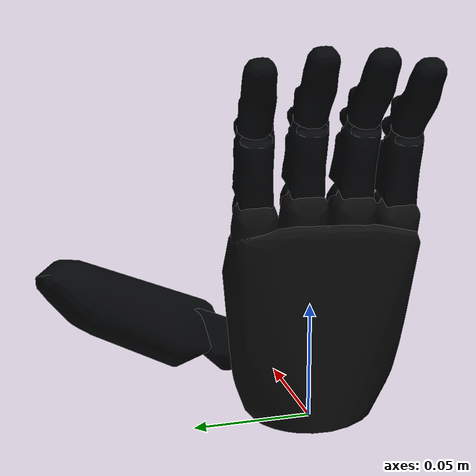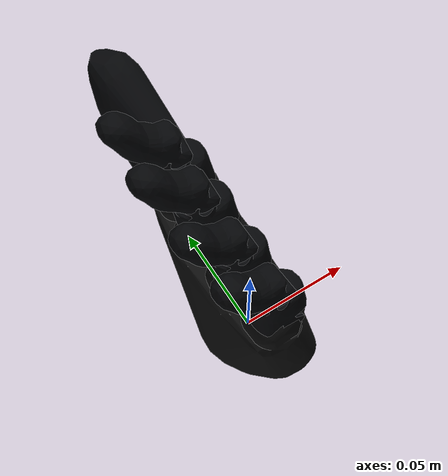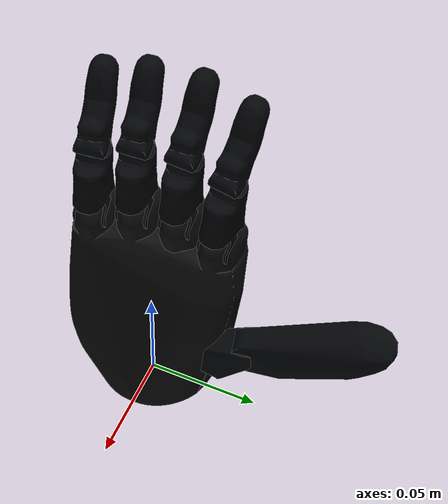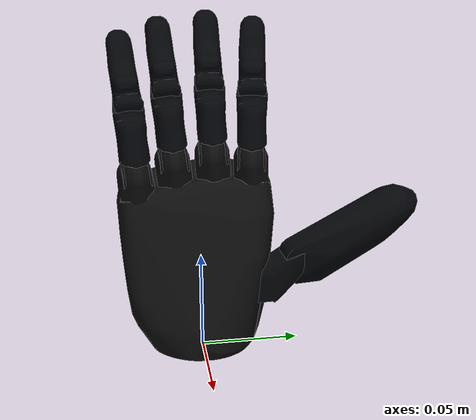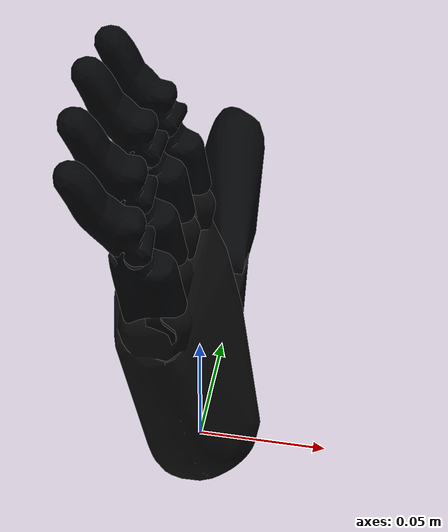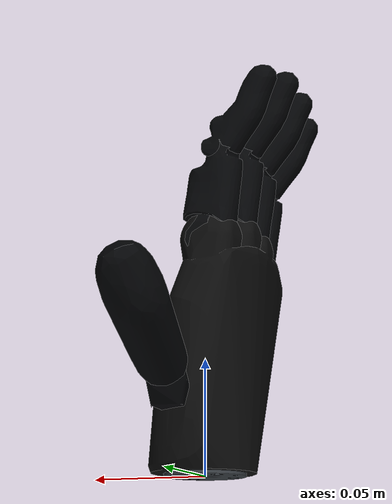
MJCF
<mujoco model="ability_hand">
  <compiler angle="radian" autolimits="true" />
  <option gravity="0 0 0" timestep="0.001" />
  <visual>
    <global offwidth="3840" offheight="2160" />
  </visual>
  <asset>
    <mesh name="wristmesh" content_type="model/obj" file="meshes/visual/wristmesh.obj" />
    <mesh name="wristmesh_C_collision000" content_type="model/obj" file="meshes/collision/wristmesh_C_collision000.obj" />
    <mesh name="FB_palm_ref_MIR" content_type="model/obj" file="meshes/visual/FB_palm_ref_MIR.obj" />
    <mesh name="FB_palm_ref_MIR_collision000" content_type="model/obj" file="meshes/collision/FB_palm_ref_MIR_collision000.obj" />
    <mesh name="FB_palm_ref_MIR_collision001" content_type="model/obj" file="meshes/collision/FB_palm_ref_MIR_collision001.obj" />
    <mesh name="FB_palm_ref_MIR_collision002" content_type="model/obj" file="meshes/collision/FB_palm_ref_MIR_collision002.obj" />
    <mesh name="FB_palm_ref_MIR_collision003" content_type="model/obj" file="meshes/collision/FB_palm_ref_MIR_collision003.obj" />
    <mesh name="FB_palm_ref_MIR_collision004" content_type="model/obj" file="meshes/collision/FB_palm_ref_MIR_collision004.obj" />
    <mesh name="thumb-F1-MIR" content_type="model/obj" file="meshes/visual/thumb-F1-MIR.obj" />
    <mesh name="thumb-F1-MIR_C_collision000" content_type="model/obj" file="meshes/collision/thumb-F1-MIR_C_collision000.obj" />
    <mesh name="thumb-F2" content_type="model/obj" file="meshes/visual/thumb-F2.obj" />
    <mesh name="thumb-F2_C_collision000" content_type="model/obj" file="meshes/collision/thumb-F2_C_collision000.obj" />
    <mesh name="idx-F1" content_type="model/obj" file="meshes/visual/idx-F1.obj" />
    <mesh name="idx-F2" content_type="model/obj" file="meshes/visual/idx-F2.obj" />
    <mesh name="idx-F2_C_collision000" content_type="model/obj" file="meshes/collision/idx-F2_C_collision000.obj" />
    <mesh name="idx-F2_C_collision001" content_type="model/obj" file="meshes/collision/idx-F2_C_collision001.obj" />
    <mesh name="idx-F2_C_collision002" content_type="model/obj" file="meshes/collision/idx-F2_C_collision002.obj" />
    <mesh name="idx-F2_C_collision003" content_type="model/obj" file="meshes/collision/idx-F2_C_collision003.obj" />
    <material name="wristmesh_material" rgba="0.20784314 0.22745098 0.24705882 1" />
    <material name="FB_palm_ref_MIR_material" rgba="0.04705882 0.04705882 0.04705882 1" />
    <material name="thumb-F1-MIR_material" rgba="0.01176471 0.01568627 0.02352941 1" />
    <material name="thumb-F2_material" rgba="0.01176471 0.01568627 0.02352941 1" />
    <material name="idx-F1_material" rgba="0.01176471 0.01568627 0.02352941 1" />
    <material name="idx-F2_material" rgba="0.01176471 0.01568627 0.02352941 1" />
    <texture type="skybox" builtin="gradient" rgb1="1 1 1" rgb2="1 1 1" width="32" height="512" />
  </asset>
  <worldbody>
    <light pos="0 0 5" dir="0 0 -1" directional="true" />
    <body name="hand_root">
      <body name="base" quat="0.707109 0 0 -0.707105">
        <inertial pos="0.0224191 -0.000157982 -1.31987e-05" quat="0.850371 -0.0113901 -0.220517 0.47761" mass="0.2" diaginertia="0.000893087 0.000893087 0.000893087" />
        <geom name="base_wristmesh_visual" type="mesh" contype="0" conaffinity="0" group="1" density="0" mesh="wristmesh" material="wristmesh_material" />
        <geom type="mesh" mesh="wristmesh_C_collision000" group="3" />
        <body name="thumb_base" pos="-0.0240477 0.00378125 0.0323296" quat="0.0442297 0.00061027 -0.999021 -2.70192e-05">
          <inertial pos="0.0224191 -0.000157982 -1.31987e-05" quat="0.850371 -0.0113901 -0.220517 0.47761" mass="0.2" diaginertia="0.000893087 0.000893087 0.000893087" />
          <geom name="thumb_base_FB_palm_ref_MIR_visual" type="mesh" contype="0" conaffinity="0" group="1" density="0" mesh="FB_palm_ref_MIR" material="FB_palm_ref_MIR_material" />
          <geom name="thumb_base_collision_part000" type="mesh" mesh="FB_palm_ref_MIR_collision000" group="3" />
          <geom name="thumb_base_collision_part001" type="mesh" mesh="FB_palm_ref_MIR_collision001" group="3" />
          <geom name="thumb_base_collision_part002" type="mesh" mesh="FB_palm_ref_MIR_collision002" group="3" />
          <geom name="thumb_base_collision_part003" type="mesh" mesh="FB_palm_ref_MIR_collision003" group="3" />
          <geom name="thumb_base_collision_part004" type="mesh" mesh="FB_palm_ref_MIR_collision004" group="3" />
          <body name="thumb_L1" quat="0 0.995546 -0.0942819 0">
            <inertial pos="0.014606 -0.00189085 -0.00311554" quat="0.306728 0.531258 0.293089 0.733336" mass="0.00268342" diaginertia="8.14795e-05 7.42718e-05 1.14409e-05" />
            <joint name="thumb_q1" pos="0 0 0" axis="0 0 1" range="-2.0944 0" actuatorfrcrange="-1.2 1.2" damping="0.1" frictionloss="0.0" armature="0.0002" />
            <geom name="thumb_L1_thumb-F1-MIR_visual" pos="0.0278284 0 0.0147507" quat="0.608761 0.793353 0 0" type="mesh" contype="0" conaffinity="0" group="1" density="0" mesh="thumb-F1-MIR" material="thumb-F1-MIR_material" />
            <geom pos="0.0278284 0 0.0147507" quat="0.608761 0.793353 0 0" type="mesh" mesh="thumb-F1-MIR_C_collision000" group="3" />
            <body name="thumb_L2" pos="0.0278284 0 0.0147507" quat="0.608761 0.793353 0 0">
              <inertial pos="0.0300205 0.00559476 -0.00415044" quat="0.00721249 0.656735 -0.223684 0.720148" mass="0.0055" diaginertia="0.00180207 0.00170892 0.000287855" />
              <joint name="thumb_q2" pos="0 0 0" axis="0 0 1" range="0 2.0944" actuatorfrcrange="-6 6" damping="0.1" frictionloss="0.0" armature="0.0002" />
              <geom name="thumb_L2_thumb-F2_visual" pos="0.0651867 0.0233402 0.00393483" quat="3.21978e-07 -0.985259 -0.171069 5.59046e-08" type="mesh" contype="0" conaffinity="0" group="1" density="0" mesh="thumb-F2" material="thumb-F2_material" />
              <geom pos="0.0651867 0.0233402 0.00393483" quat="3.21978e-07 -0.985259 -0.171069 5.59046e-08" type="mesh" mesh="thumb-F2_C_collision000" group="3" />
              <body name="thumb_tip" pos="0.065 0.016 0" />
            </body>
          </body>
          <body name="index_L1" pos="0.00949 -0.01304 -0.06295" quat="0.744129 -0.128113 0.653556 -0.0521858">
            <inertial pos="0.0224191 -0.000157982 -1.31987e-05" quat="-0.00406251 0.706621 0.00934715 0.707518" mass="0.00635888" diaginertia="0.000381765 0.000369601 2.96432e-05" />
            <joint name="index_q1" pos="0 0 0" axis="0 0 1" range="0 2.0944" actuatorfrcrange="-6 6" damping="0.1" frictionloss="0.0" armature="0.0002" />
            <geom name="index_L1_idx-F1_visual" pos="0.0384727 0.0032577 0" quat="0.999108 0 0 0.0422244" type="mesh" contype="0" conaffinity="0" group="1" density="0" mesh="idx-F1" material="idx-F1_material" />
            <geom size="0.0085" pos="0.036 -0.00175 0" group="3" />
            <geom size="0.014 0.006 0.008" pos="0.019 -0.0045 0" quat="0.999108 0 0 0.0422374" type="box" group="3" />
            <geom size="0.01 0.005 0.008" pos="0.018 0.006 0" quat="0.999108 0 0 0.0422374" type="box" group="3" />
            <geom size="0.006 0.006 0.001" pos="-0.001 0 0.007" quat="0.999108 0 0 0.0422374" type="box" group="3" />
            <geom size="0.006 0.006 0.001" pos="-0.001 0 -0.007" quat="0.999108 0 0 0.0422374" type="box" group="3" />
            <body name="index_L2" pos="0.0384727 0.0032577 0" quat="0.999108 0 0 0.0422244">
              <inertial pos="0.0133682 -0.00875392 -2.886e-05" quat="-0.161363 0.673074 0.216775 0.688434" mass="0.00645" diaginertia="0.000264645 0.000263553 1.71391e-05" />
              <joint name="index_q2" pos="0 0 0" axis="0 0 1" range="0 2.6586" actuatorfrcrange="-6 6" damping="0.0" frictionloss="0.0" armature="0.0" />
              <geom name="index_L2_idx-F2_visual" pos="0.0091241 0 0" quat="1 0 0 0" type="mesh" contype="0" conaffinity="0" group="1" density="0" mesh="idx-F2" material="idx-F2_material" />
              <geom name="index_L2_collision_part000" type="mesh" mesh="idx-F2_C_collision000" group="3" />
              <geom name="index_L2_collision_part001" type="mesh" mesh="idx-F2_C_collision001" group="3" />
              <geom name="index_L2_collision_part002" type="mesh" mesh="idx-F2_C_collision002" group="3" />
              <geom name="index_L2_collision_part003" type="mesh" mesh="idx-F2_C_collision003" group="3" />
              <geom size="0.007" pos="0.03 -0.016 0" group="3" />
              <body name="index_tip" pos="0.035 -0.018 0" />
            </body>
          </body>
          <body name="middle_L1" pos="-0.00965319 -0.0153103 -0.0678539" quat="0.728921 -0.100652 0.672921 -0.0756367">
            <inertial pos="0.0224191 -0.000157982 -1.31987e-05" quat="-0.00406251 0.706621 0.00934715 0.707518" mass="0.00635888" diaginertia="0.000381765 0.000369601 2.96432e-05" />
            <joint name="middle_q1" pos="0 0 0" axis="0 0 1" range="0 2.0944" actuatorfrcrange="-6 6" damping="0.1" frictionloss="0.0" armature="0.0002" />
            <geom name="middle_L1_idx-F1_visual" pos="0.0384727 0.0032577 0" quat="0.999108 0 0 0.0422244" type="mesh" contype="0" conaffinity="0" group="1" density="0" mesh="idx-F1" material="idx-F1_material" />
            <geom size="0.0085" pos="0.036 -0.00175 0" group="3" />
            <geom size="0.014 0.006 0.008" pos="0.019 -0.0045 0" quat="0.999108 0 0 0.0422374" type="box" group="3" />
            <geom size="0.01 0.005 0.008" pos="0.018 0.006 0" quat="0.999108 0 0 0.0422374" type="box" group="3" />
            <geom size="0.006 0.006 0.001" pos="-0.001 0 0.007" quat="0.999108 0 0 0.0422374" type="box" group="3" />
            <geom size="0.006 0.006 0.001" pos="-0.001 0 -0.007" quat="0.999108 0 0 0.0422374" type="box" group="3" />
            <body name="middle_L2" pos="0.0384727 0.0032577 0" quat="0.999108 0 0 0.0422244">
              <inertial pos="0.0133682 -0.00875392 -2.886e-05" quat="-0.161363 0.673074 0.216775 0.688434" mass="0.00645" diaginertia="0.000264645 0.000263553 1.71391e-05" />
              <joint name="middle_q2" pos="0 0 0" axis="0 0 1" range="0 2.6586" actuatorfrcrange="-6 6" damping="0.0" frictionloss="0.0" armature="0.0" />
              <geom name="middle_L2_idx-F2_visual" pos="0.0091241 0 0" quat="1 0 0 0" type="mesh" contype="0" conaffinity="0" group="1" density="0" mesh="idx-F2" material="idx-F2_material" />
              <geom name="middle_L2_collision_part000" type="mesh" mesh="idx-F2_C_collision000" group="3" />
              <geom name="middle_L2_collision_part001" type="mesh" mesh="idx-F2_C_collision001" group="3" />
              <geom name="middle_L2_collision_part002" type="mesh" mesh="idx-F2_C_collision002" group="3" />
              <geom name="middle_L2_collision_part003" type="mesh" mesh="idx-F2_C_collision003" group="3" />
              <geom size="0.007" pos="0.03 -0.016 0" group="3" />
              <body name="middle_tip" pos="0.035 -0.018 0" />
            </body>
          </body>
          <body name="ring_L1" pos="-0.0299543 -0.0142125 -0.0672861" quat="0.712473 -0.072948 0.690473 -0.101527">
            <inertial pos="0.0224191 -0.000157982 -1.31987e-05" quat="-0.00406251 0.706621 0.00934715 0.707518" mass="0.00635888" diaginertia="0.000381765 0.000369601 2.96432e-05" />
            <joint name="ring_q1" pos="0 0 0" axis="0 0 1" range="0 2.0944" actuatorfrcrange="-6 6" damping="0.1" frictionloss="0.0" armature="0.0002" />
            <geom name="ring_L1_idx-F1_visual" pos="0.0384727 0.0032577 0" quat="0.999108 0 0 0.0422244" type="mesh" contype="0" conaffinity="0" group="1" density="0" mesh="idx-F1" material="idx-F1_material" />
            <geom size="0.0085" pos="0.036 -0.00175 0" group="3" />
            <geom size="0.014 0.006 0.008" pos="0.019 -0.0045 0" quat="0.999108 0 0 0.0422374" type="box" group="3" />
            <geom size="0.01 0.005 0.008" pos="0.018 0.006 0" quat="0.999108 0 0 0.0422374" type="box" group="3" />
            <geom size="0.006 0.006 0.001" pos="-0.001 0 0.007" quat="0.999108 0 0 0.0422374" type="box" group="3" />
            <geom size="0.006 0.006 0.001" pos="-0.001 0 -0.007" quat="0.999108 0 0 0.0422374" type="box" group="3" />
            <body name="ring_L2" pos="0.0384727 0.0032577 0" quat="0.999108 0 0 0.0422244">
              <inertial pos="0.0133682 -0.00875392 -2.886e-05" quat="-0.161363 0.673074 0.216775 0.688434" mass="0.00645" diaginertia="0.000264645 0.000263553 1.71391e-05" />
              <joint name="ring_q2" pos="0 0 0" axis="0 0 1" range="0 2.6586" actuatorfrcrange="-6 6" damping="0.0" frictionloss="0.0" armature="0.0" />
              <geom name="ring_L2_idx-F2_visual" pos="0.0091241 0 0" quat="1 0 0 0" type="mesh" contype="0" conaffinity="0" group="1" density="0" mesh="idx-F2" material="idx-F2_material" />
              <geom name="ring_L2_collision_part000" type="mesh" mesh="idx-F2_C_collision000" group="3" />
              <geom name="ring_L2_collision_part001" type="mesh" mesh="idx-F2_C_collision001" group="3" />
              <geom name="ring_L2_collision_part002" type="mesh" mesh="idx-F2_C_collision002" group="3" />
              <geom name="ring_L2_collision_part003" type="mesh" mesh="idx-F2_C_collision003" group="3" />
              <geom size="0.007" pos="0.03 -0.016 0" group="3" />
              <body name="ring_tip" pos="0.035 -0.018 0" />
            </body>
          </body>
          <body name="pinky_L1" pos="-0.0495213 -0.0110046 -0.0630291" quat="0.712968 -0.0493647 0.688339 -0.124214">
            <inertial pos="0.0224191 -0.000157982 -1.31987e-05" quat="-0.00406251 0.706621 0.00934715 0.707518" mass="0.00635888" diaginertia="0.000381765 0.000369601 2.96432e-05" />
            <joint name="pinky_q1" pos="0 0 0" axis="0 0 1" range="0 2.0944" actuatorfrcrange="-6 6" damping="0.1" frictionloss="0.0" armature="0.0002" />
            <geom name="pinky_L1_idx-F1_visual" pos="0.0384727 0.0032577 0" quat="0.999108 0 0 0.0422244" type="mesh" contype="0" conaffinity="0" group="1" density="0" mesh="idx-F1" material="idx-F1_material" />
            <geom size="0.0085" pos="0.036 -0.00175 0" group="3" />
            <geom size="0.014 0.006 0.008" pos="0.019 -0.0045 0" quat="0.999108 0 0 0.0422374" type="box" group="3" />
            <geom size="0.01 0.005 0.008" pos="0.018 0.006 0" quat="0.999108 0 0 0.0422374" type="box" group="3" />
            <geom size="0.006 0.006 0.001" pos="-0.001 0 0.007" quat="0.999108 0 0 0.0422374" type="box" group="3" />
            <geom size="0.006 0.006 0.001" pos="-0.001 0 -0.007" quat="0.999108 0 0 0.0422374" type="box" group="3" />
            <body name="pinky_L2" pos="0.0384727 0.0032577 0" quat="0.999108 0 0 0.0422244">
              <inertial pos="0.0133682 -0.00875392 -2.886e-05" quat="-0.161363 0.673074 0.216775 0.688434" mass="0.00645" diaginertia="0.000264645 0.000263553 1.71391e-05" />
              <joint name="pinky_q2" pos="0 0 0" axis="0 0 1" range="0 2.6586" actuatorfrcrange="-6 6" damping="0.0" frictionloss="0.0" armature="0.0" />
              <geom name="pinky_L2_idx-F2_visual" pos="0.0091241 0 0" quat="1 0 0 0" type="mesh" contype="0" conaffinity="0" group="1" density="0" mesh="idx-F2" material="idx-F2_material" />
              <geom name="pinky_L2_collision_part000" type="mesh" mesh="idx-F2_C_collision000" group="3" />
              <geom name="pinky_L2_collision_part001" type="mesh" mesh="idx-F2_C_collision001" group="3" />
              <geom name="pinky_L2_collision_part002" type="mesh" mesh="idx-F2_C_collision002" group="3" />
              <geom name="pinky_L2_collision_part003" type="mesh" mesh="idx-F2_C_collision003" group="3" />
              <geom size="0.007" pos="0.03 -0.016 0" group="3" />
              <body name="pinky_tip" pos="0.035 -0.018 0" />
            </body>
          </body>
        </body>
      </body>
    </body>
  </worldbody>
  <contact>
    <exclude name="ex_base_thumb_base" body1="base" body2="thumb_base" />
    <exclude name="ex_thumb_base_thumb_L1" body1="thumb_base" body2="thumb_L1" />
    <exclude name="ex_thumb_L1_thumb_L2" body1="thumb_L1" body2="thumb_L2" />
    <exclude name="ex_thumb_L2_thumb_tip" body1="thumb_L2" body2="thumb_tip" />
    <exclude name="ex_thumb_base_index_L1" body1="thumb_base" body2="index_L1" />
    <exclude name="ex_index_L1_index_L2" body1="index_L1" body2="index_L2" />
    <exclude name="ex_index_L2_index_tip" body1="index_L2" body2="index_tip" />
    <exclude name="ex_thumb_base_middle_L1" body1="thumb_base" body2="middle_L1" />
    <exclude name="ex_middle_L1_middle_L2" body1="middle_L1" body2="middle_L2" />
    <exclude name="ex_middle_L2_middle_tip" body1="middle_L2" body2="middle_tip" />
    <exclude name="ex_thumb_base_ring_L1" body1="thumb_base" body2="ring_L1" />
    <exclude name="ex_ring_L1_ring_L2" body1="ring_L1" body2="ring_L2" />
    <exclude name="ex_ring_L2_ring_tip" body1="ring_L2" body2="ring_tip" />
    <exclude name="ex_thumb_base_pinky_L1" body1="thumb_base" body2="pinky_L1" />
    <exclude name="ex_pinky_L1_pinky_L2" body1="pinky_L1" body2="pinky_L2" />
    <exclude name="ex_pinky_L2_pinky_tip" body1="pinky_L2" body2="pinky_tip" />
  </contact>
  <equality>
    <joint name="index_q2_mimic" joint1="index_q2" joint2="index_q1" polycoef="0.72349796 1.05851325 0 0 0" solref="0.002 1" solimp="0.9 0.99 0.001" />
    <joint name="middle_q2_mimic" joint1="middle_q2" joint2="middle_q1" polycoef="0.72349796 1.05851325 0 0 0" solref="0.002 1" solimp="0.9 0.99 0.001" />
    <joint name="ring_q2_mimic" joint1="ring_q2" joint2="ring_q1" polycoef="0.72349796 1.05851325 0 0 0" solref="0.002 1" solimp="0.9 0.99 0.001" />
    <joint name="pinky_q2_mimic" joint1="pinky_q2" joint2="pinky_q1" polycoef="0.72349796 1.05851325 0 0 0" solref="0.002 1" solimp="0.9 0.99 0.001" />
  </equality>
  <actuator>
    <position name="thumb_q1_actuator" joint="thumb_q1" kp="1" forcerange="-1 1" ctrlrange="-2.0943951 0" />
    <position name="thumb_q2_actuator" joint="thumb_q2" kp="1" forcerange="-1 1" ctrlrange="0 2.0943951" />
    <position name="index_q1_actuator" joint="index_q1" kp="1" forcerange="-1 1" ctrlrange="0 2.0943951" />
    <position name="middle_q1_actuator" joint="middle_q1" kp="1" forcerange="-1 1" ctrlrange="0 2.0943951" />
    <position name="ring_q1_actuator" joint="ring_q1" kp="1" forcerange="-1 1" ctrlrange="0 2.0943951" />
    <position name="pinky_q1_actuator" joint="pinky_q1" kp="1" forcerange="-1 1" ctrlrange="0 2.0943951" />
  </actuator>
</mujoco>
